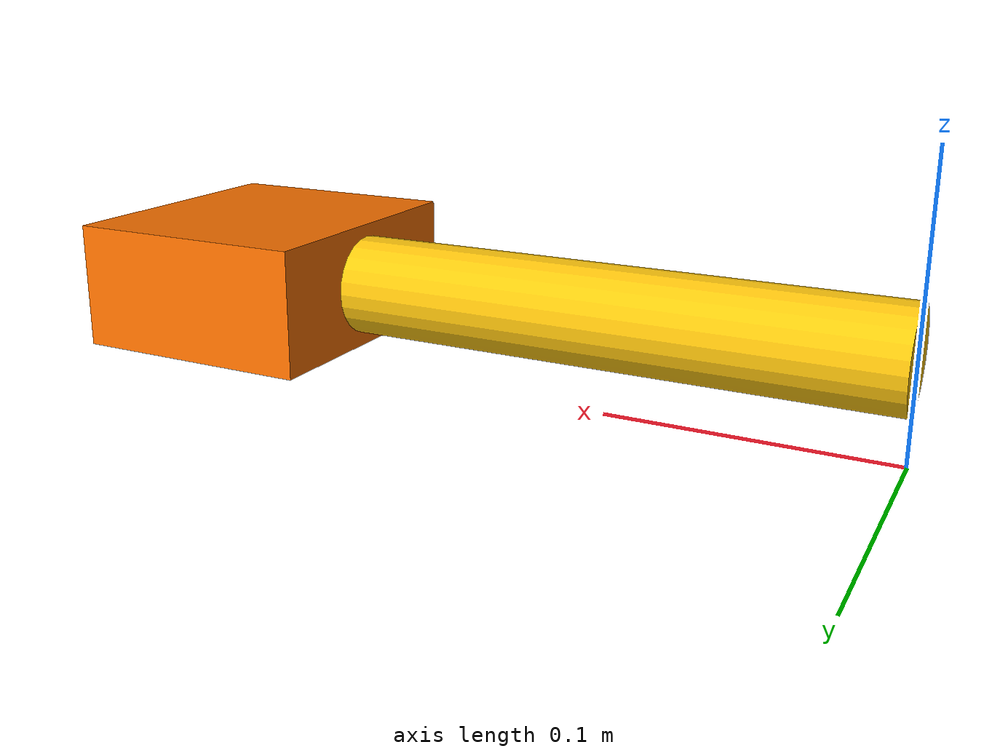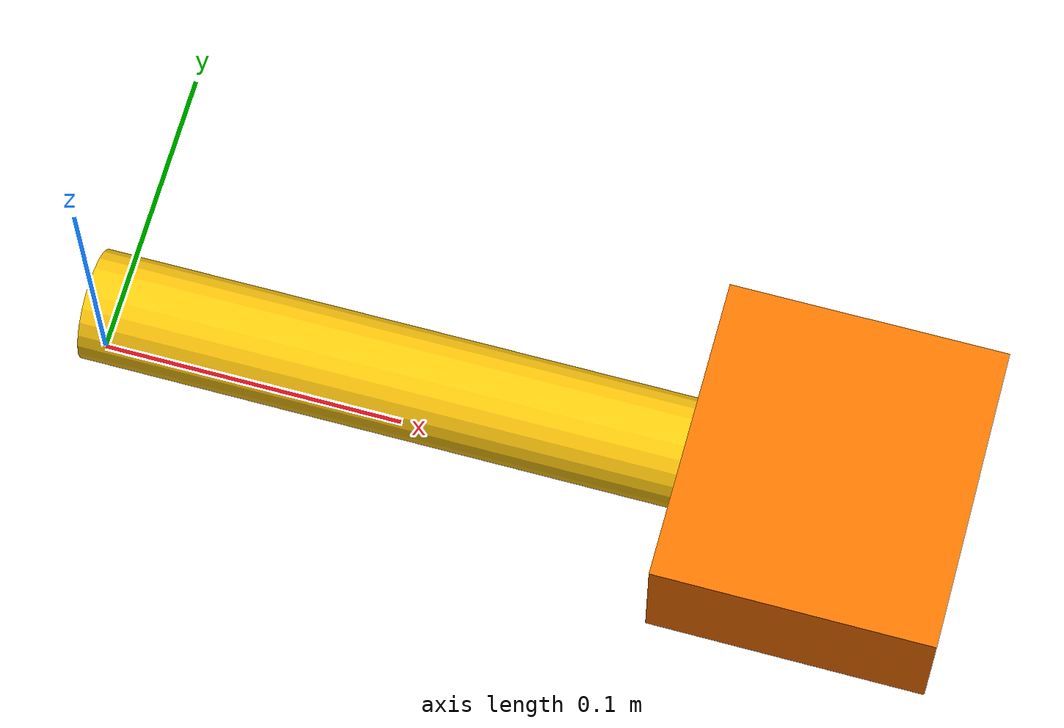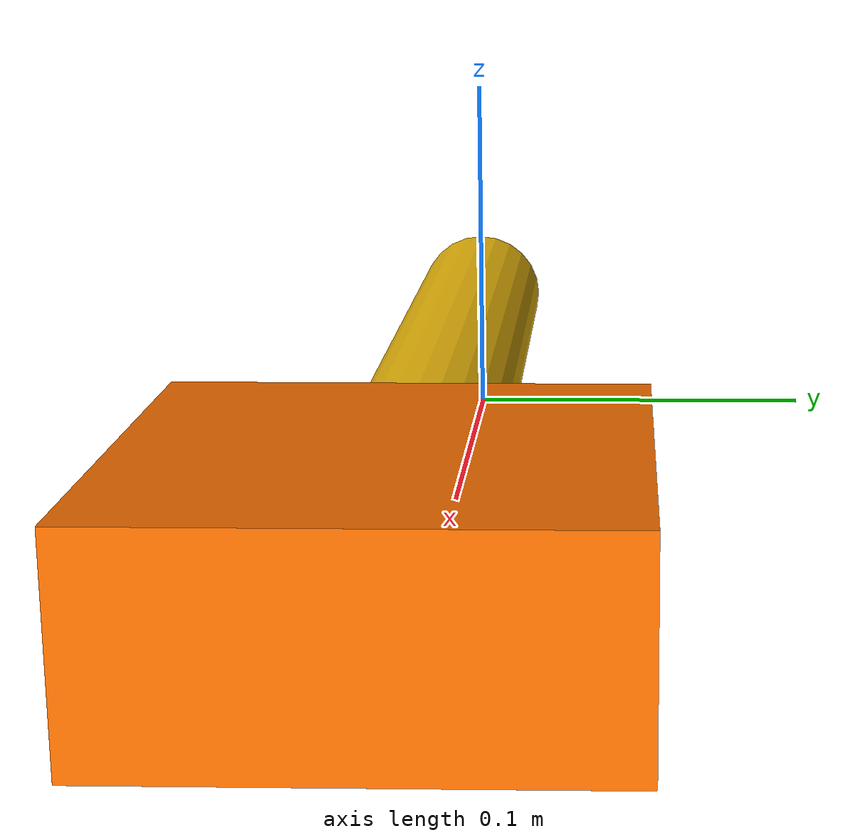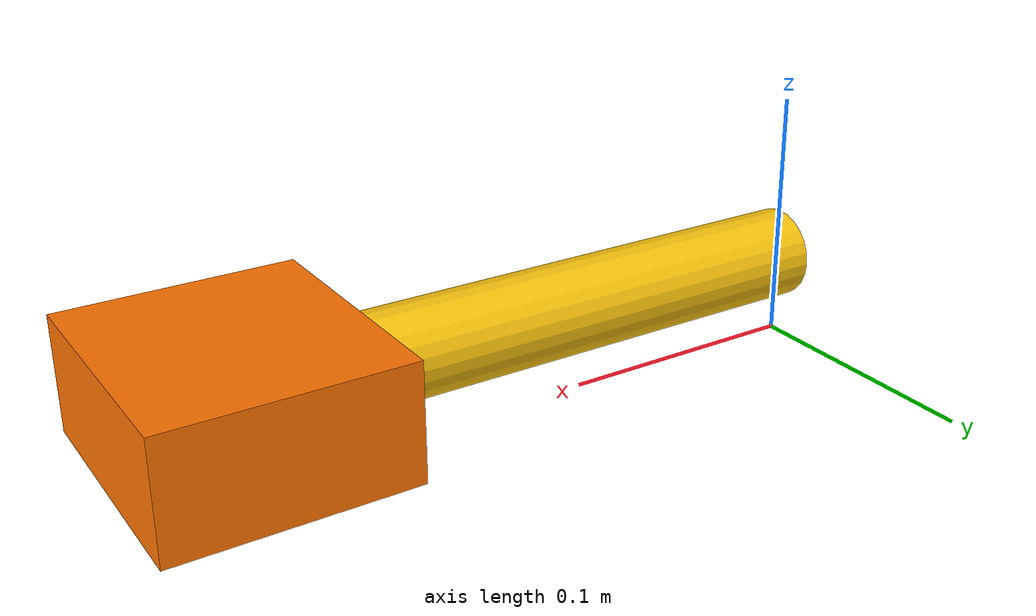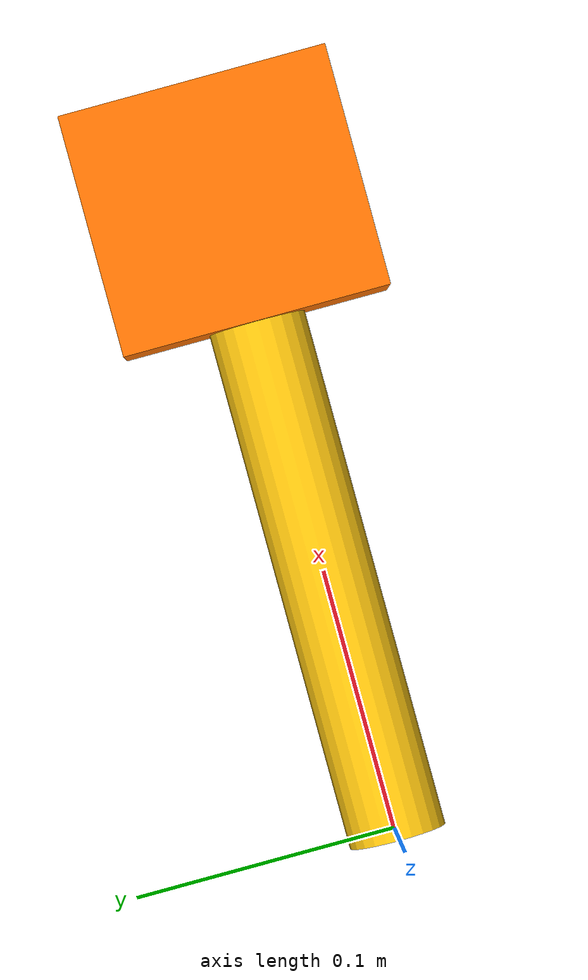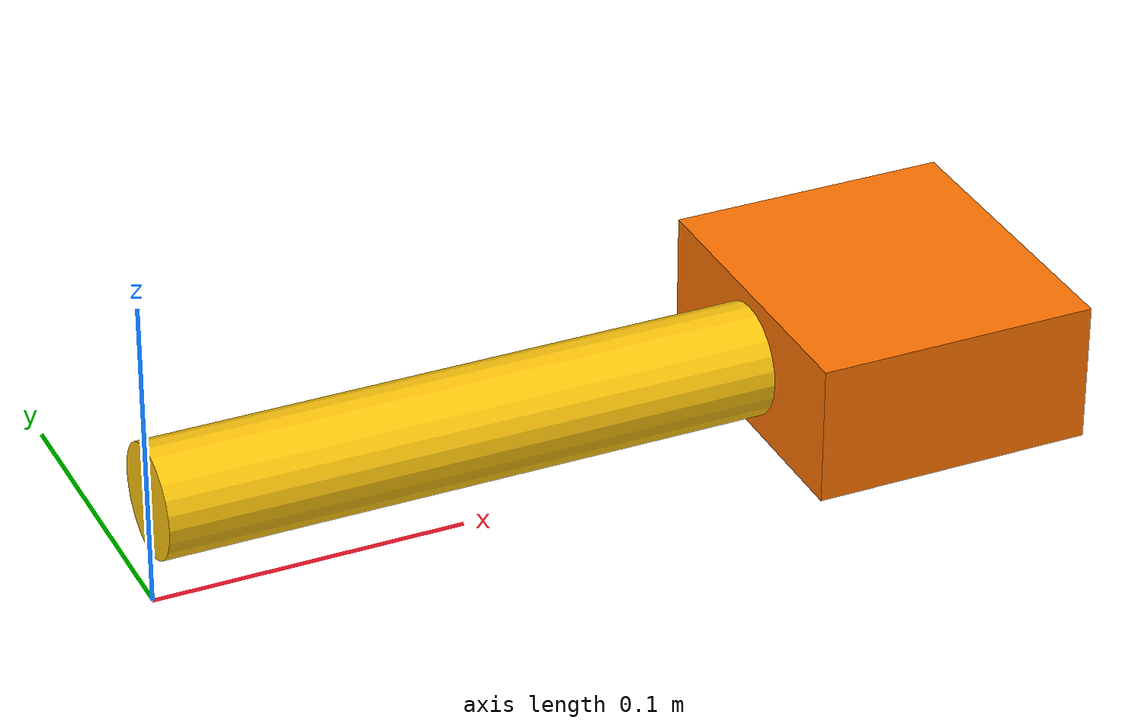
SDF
<?xml version="1.0"?>
<sdf version="1.6">
  <model name="biped_direction_marker">
    <static>false</static>
    <kinematic>true</kinematic>
    <link name="arrow">
      <visual name="shaft">
        <pose>0.10 0 0.035 0 1.57079632679 0</pose>
        <geometry>
          <cylinder>
            <radius>0.018</radius>
            <length>0.20</length>
          </cylinder>
        </geometry>
        <material>
          <ambient>1.0 0.78 0.05 1</ambient>
          <diffuse>1.0 0.78 0.05 1</diffuse>
          <specular>0.2 0.2 0.1 1</specular>
        </material>
      </visual>
      <visual name="head">
        <pose>0.24 0 0.035 0 0 0</pose>
        <geometry>
          <box>
            <size>0.09 0.10 0.045</size>
          </box>
        </geometry>
        <material>
          <ambient>1.0 0.45 0.0 1</ambient>
          <diffuse>1.0 0.45 0.0 1</diffuse>
          <specular>0.2 0.1 0.0 1</specular>
        </material>
      </visual>
    </link>
  </model>
</sdf>
